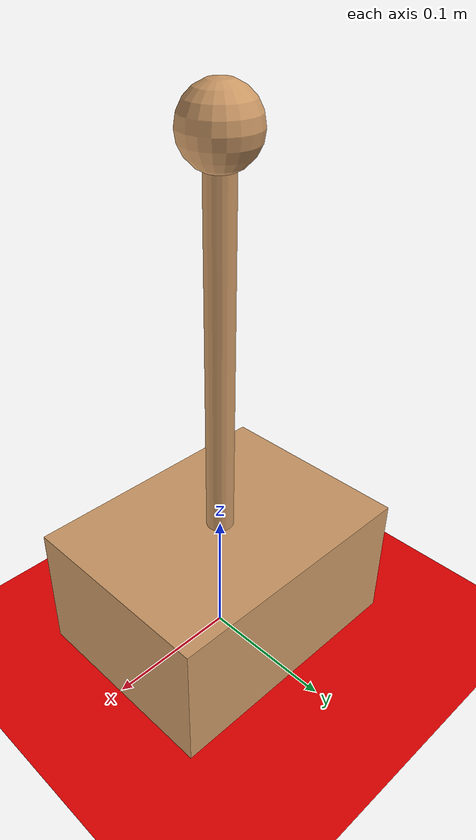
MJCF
<mujoco model="cart_pole">
    <default>
    <geom rgba=".8 .6 .4 1"/>
    </default>

    <asset>
    <texture type="skybox" builtin="gradient" rgb1="1 1 1" rgb2=".6 .8 1" width="256" height="256"/>
    </asset>

    <worldbody>

        <light pos="0 1 1" dir="0 -1 -1" diffuse="1 1 1"/>

        <geom type="plane" size="1 1 0.1" rgba=".9 0 0 1"/>

        <body name="cart" pos="0 0 0.0508">

            <joint name="cart_joint" type="slide" axis="1 0 0"/>
            <geom type="box" size=".1016 .0762 .0508" mass="1" friction="0 0 0"/>

            <body name="pole" pos="0 0 .0254">
                <joint name="pole_joint" type="hinge" axis="0 -1 0"/>
                <geom type="capsule" size="0.01" fromto="0 0 0 0 0 .3" friction="0 0 0"/>

                    <body pos="0 0 .3">
                        <geom type="sphere" mass=".2" size=".025" />

                    </body>
            </body>

        </body>

    </worldbody>

  <actuator>
		<general name="cart_joint_actuator" joint="cart_joint"  />
  </actuator>

  <keyframe>
    <key name="default_initial"
         qpos="0.001  0.001"
         qvel="0.0  0.0"
         />

    <key name="custom_initial"
         qpos="0.0  0.2"
         qvel="0.0  0.0"
         />

  </keyframe>

</mujoco>
